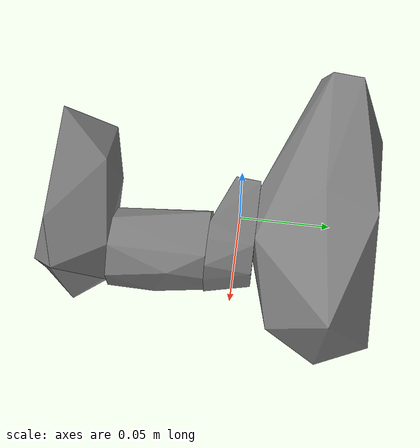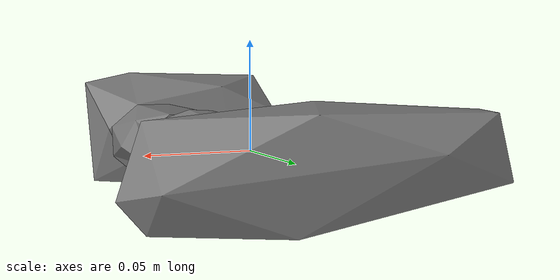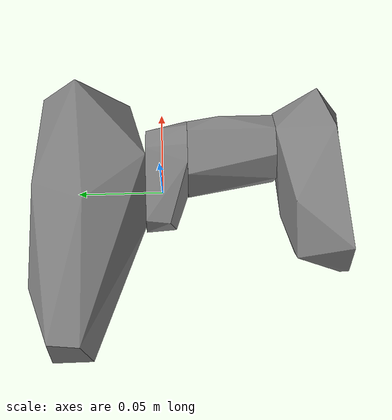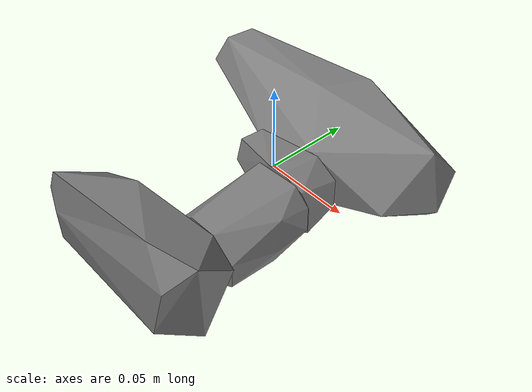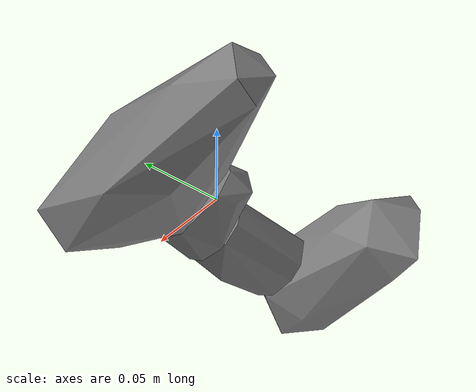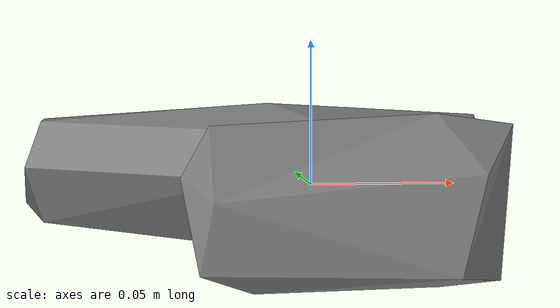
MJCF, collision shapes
<mujoco model="power_drill">
  <compiler angle="radian" />

  <asset>
    <mesh name="power_drill_visual_mesh" file="power_drill/textured.obj" />
    <mesh name="power_drill_collision_mesh_0" file="power_drill/textured_coacd_0.stl" />
    <mesh name="power_drill_collision_mesh_1" file="power_drill/textured_coacd_1.stl" />
    <mesh name="power_drill_collision_mesh_2" file="power_drill/textured_coacd_2.stl" />
    <mesh name="power_drill_collision_mesh_3" file="power_drill/textured_coacd_3.stl" />
    <texture name="power_drill_texture" type="2d" file="power_drill/texture_map.png" />
    <material name="power_drill_material" texture="power_drill_texture" />
  </asset>

  <worldbody>
    <body name="power_drill" pos="0 0 0" euler="0 0 0">
      <freejoint name="power_drill_joint" />
      <geom name="power_drill_visual_geom" type="mesh" mesh="power_drill_visual_mesh" material="power_drill_material" pos="0.030714691255337507 -0.024350845730285495 -0.02356763398968421" euler="0 0 0" contype="0" conaffinity="0" group="0" />
      <geom name="power_drill_collision_geom_0" type="mesh" mesh="power_drill_collision_mesh_0" pos="0.030714691255337507 -0.024350845730285495 -0.02356763398968421" euler="0 0 0" contype="1" conaffinity="1" group="3" />
      <geom name="power_drill_collision_geom_1" type="mesh" mesh="power_drill_collision_mesh_1" pos="0.030714691255337507 -0.024350845730285495 -0.02356763398968421" euler="0 0 0" contype="1" conaffinity="1" group="3" />
      <geom name="power_drill_collision_geom_2" type="mesh" mesh="power_drill_collision_mesh_2" pos="0.030714691255337507 -0.024350845730285495 -0.02356763398968421" euler="0 0 0" contype="1" conaffinity="1" group="3" />
      <geom name="power_drill_collision_geom_3" type="mesh" mesh="power_drill_collision_mesh_3" pos="0.030714691255337507 -0.024350845730285495 -0.02356763398968421" euler="0 0 0" contype="1" conaffinity="1" group="3" />
      <inertial pos="0 0 0" euler="0 0 0" mass="0.895" diaginertia="0.001 0.001 0.001" />
    </body>
  </worldbody>
</mujoco>
